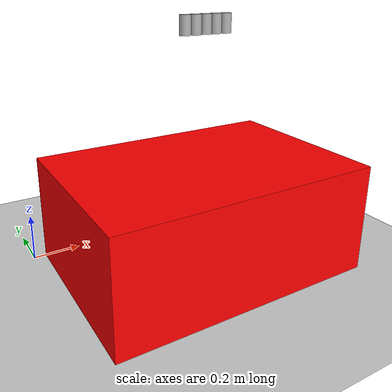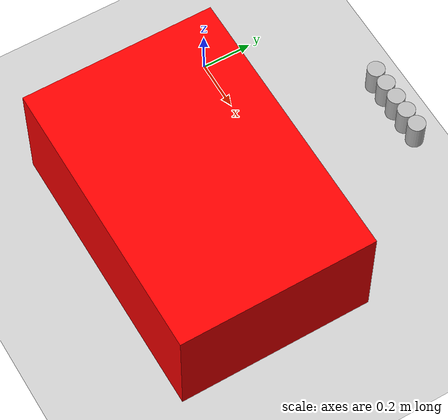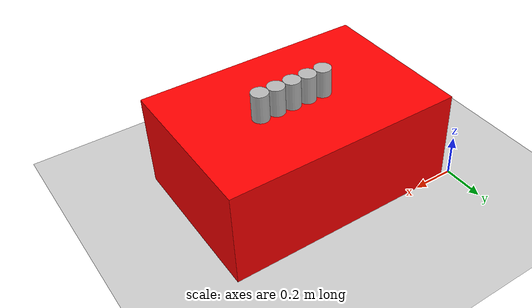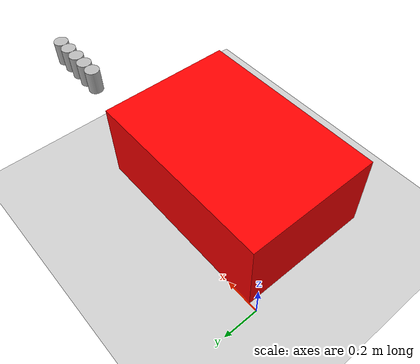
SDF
<sdf version="1.6">
 <world name="default">
  <light name="sun" type="directional">
   <pose>0 0 10 0 -0 0</pose>
   <diffuse>0.8 0.8 0.8 1</diffuse>
   <specular>0.2 0.2 0.2 1</specular>
   <attenuation>
    <range>1000</range>
    <constant>0.9</constant>
    <linear>0.01</linear>
    <quadratic>0.001</quadratic>
   </attenuation>
   <direction>-0.5 0.1 -0.9</direction>
  </light>
  <model name="ground_plane">
   <static>1</static>
   <link name="link">
    <collision name="collision">
     <geometry><plane><normal>0 0 1</normal><size>100 100</size></plane></geometry>
     <surface>
      <contact><collide_bitmask>65535</collide_bitmask></contact>
      <friction><ode><mu>100</mu><mu2>50</mu2></ode></friction>
     </surface>
    </collision>
    <visual name="visual">
     <cast_shadows>0</cast_shadows>
     <geometry><plane><normal>0 0 1</normal><size>100 100</size></plane></geometry>
     <material>
      <script><uri>file://media/materials/scripts/gazebo.material</uri><name>Gazebo/Grey</name></script>
     </material>
    </visual>
   </link>
  </model>
  <gravity>0 0 -9.8</gravity>
  <magnetic_field>6e-06 2.3e-05 -4.2e-05</magnetic_field>
  <atmosphere type="adiabatic"/>
  <physics name="default_physics" default="0" type="ode">
   <max_step_size>0.001</max_step_size>
   <real_time_factor>1</real_time_factor>
   <real_time_update_rate>1000</real_time_update_rate>
  </physics>
  <scene><ambient>0.4 0.4 0.4 1</ambient><background>0.7 0.7 0.7 1</background><shadows>1</shadows></scene>
  <audio><device>default</device></audio>
  <spherical_coordinates>
   <surface_model>EARTH_WGS84</surface_model>
   <latitude_deg>0</latitude_deg>
   <longitude_deg>0</longitude_deg>
   <elevation>0</elevation>
   <heading_deg>0</heading_deg>
  </spherical_coordinates>
  <model name="bench">
   <link name="link_1">
    <inertial>
     <mass>1</mass>
     <inertia>
      <ixx>0.166667</ixx>
      <ixy>0</ixy>
      <ixz>0</ixz>
      <iyy>0.166667</iyy>
      <iyz>0</iyz>
      <izz>0.166667</izz>
     </inertia>
    </inertial>
    <pose>0 -1e-06 0 1.57264 -0 0</pose>
    <visual name="visual">
     <geometry>
      <mesh>
       <uri>/home/hrigroup/MonashRA/moveit_ws/src/models/shelf_parts/shelf_2.STL</uri>
       <scale>1 1 1</scale>
      </mesh>
     </geometry>
     <material>
      <lighting>1</lighting>
      <script><uri>file://media/materials/scripts/gazebo.material</uri><name>Gazebo/Grey</name></script>
      <ambient>1 0 0 0</ambient>
      <shader type="vertex"><normal_map>__default__</normal_map></shader>
      <diffuse>0.7 0.7 0.7 1</diffuse>
      <specular>0.01 0.01 0.01 1</specular>
      <emissive>0 0 0 1</emissive>
     </material>
    </visual>
    <collision name="collision">
     <geometry>
      <mesh>
       <uri>/home/hrigroup/MonashRA/moveit_ws/src/models/shelf_parts/shelf_2.STL</uri>
       <scale>1 1 1</scale>
      </mesh>
     </geometry>
     <surface>
      <friction>
       <ode><mu>1</mu><mu2>1</mu2><fdir1>0 0 0</fdir1><slip1>0</slip1><slip2>0</slip2></ode>
       <torsional>
        <coefficient>1</coefficient>
        <patch_radius>0</patch_radius>
        <surface_radius>0</surface_radius>
        <use_patch_radius>1</use_patch_radius>
        <ode><slip>0</slip></ode>
       </torsional>
      </friction>
      <bounce><restitution_coefficient>0</restitution_coefficient><threshold>1e+06</threshold></bounce>
      <contact>
       <collide_without_contact>0</collide_without_contact>
       <collide_without_contact_bitmask>1</collide_without_contact_bitmask>
       <collide_bitmask>1</collide_bitmask>
       <ode>
        <soft_cfm>0</soft_cfm>
        <soft_erp>0.2</soft_erp>
        <kp>1e+13</kp>
        <kd>1</kd>
        <max_vel>0.01</max_vel>
        <min_depth>0</min_depth>
       </ode>
       <bullet>
        <split_impulse>1</split_impulse>
        <split_impulse_penetration_threshold>-0.01</split_impulse_penetration_threshold>
        <soft_cfm>0</soft_cfm>
        <soft_erp>0.2</soft_erp>
        <kp>1e+13</kp>
        <kd>1</kd>
       </bullet>
      </contact>
     </surface>
    </collision>
   </link>
   <static>1</static>
  </model>
  <model name="beer1">
   <link name="link">
    <pose>0 0 0.05 0 -0 0</pose>
    <inertial>
     <mass>0.39</mass>
     <inertia><ixx>0.00058</ixx><ixy>0</ixy><ixz>0</ixz><iyy>0.00058</iyy><iyz>0</iyz><izz>0.00019</izz></inertia>
    </inertial>
    <collision name="collision">
     <geometry><cylinder><radius>0.03</radius><length>0.10</length></cylinder></geometry>
    </collision>
    <visual name="visual">
     <geometry><cylinder><radius>0.03</radius><length>0.10</length></cylinder></geometry>
     <material>
      <script>
       <uri>model://beer/materials/scripts</uri>
       <uri>model://beer/materials/textures</uri>
       <name>Beer/Diffuse</name>
      </script>
     </material>
    </visual>
   </link>
   <pose>1.1 0.15 0.9 0 0 0</pose>
  </model>
  <model name="beer2">
   <link name="link">
    <pose>0 0 0.05 0 -0 0</pose>
    <inertial>
     <mass>0.39</mass>
     <inertia><ixx>0.00058</ixx><ixy>0</ixy><ixz>0</ixz><iyy>0.00058</iyy><iyz>0</iyz><izz>0.00019</izz></inertia>
    </inertial>
    <collision name="collision">
     <geometry><cylinder><radius>0.03</radius><length>0.10</length></cylinder></geometry>
    </collision>
    <visual name="visual">
     <geometry><cylinder><radius>0.03</radius><length>0.10</length></cylinder></geometry>
     <material>
      <script>
       <uri>model://beer/materials/scripts</uri>
       <uri>model://beer/materials/textures</uri>
       <name>Beer/Diffuse</name>
      </script>
     </material>
    </visual>
   </link>
   <pose>1.04 0.15 0.9 0 0 0</pose>
  </model>
  <model name="beer3">
   <link name="link">
    <pose>0 0 0.05 0 -0 0</pose>
    <inertial>
     <mass>0.39</mass>
     <inertia><ixx>0.00058</ixx><ixy>0</ixy><ixz>0</ixz><iyy>0.00058</iyy><iyz>0</iyz><izz>0.00019</izz></inertia>
    </inertial>
    <collision name="collision">
     <geometry><cylinder><radius>0.03</radius><length>0.10</length></cylinder></geometry>
    </collision>
    <visual name="visual">
     <geometry><cylinder><radius>0.03</radius><length>0.10</length></cylinder></geometry>
     <material>
      <script>
       <uri>model://beer/materials/scripts</uri>
       <uri>model://beer/materials/textures</uri>
       <name>Beer/Diffuse</name>
      </script>
     </material>
    </visual>
   </link>
   <pose>0.98 0.15 0.9 0 0 0</pose>
  </model>
  <model name="beer4">
   <link name="link">
    <pose>0 0 0.05 0 -0 0</pose>
    <inertial>
     <mass>0.39</mass>
     <inertia><ixx>0.00058</ixx><ixy>0</ixy><ixz>0</ixz><iyy>0.00058</iyy><iyz>0</iyz><izz>0.00019</izz></inertia>
    </inertial>
    <collision name="collision">
     <geometry><cylinder><radius>0.03</radius><length>0.10</length></cylinder></geometry>
    </collision>
    <visual name="visual">
     <geometry><cylinder><radius>0.03</radius><length>0.10</length></cylinder></geometry>
     <material>
      <script>
       <uri>model://beer/materials/scripts</uri>
       <uri>model://beer/materials/textures</uri>
       <name>Beer/Diffuse</name>
      </script>
     </material>
    </visual>
   </link>
   <pose>0.92 0.15 0.9 0 0 0</pose>
  </model>
  <model name="beer5">
   <link name="link">
    <pose>0 0 0.05 0 -0 0</pose>
    <inertial>
     <mass>0.39</mass>
     <inertia><ixx>0.00058</ixx><ixy>0</ixy><ixz>0</ixz><iyy>0.00058</iyy><iyz>0</iyz><izz>0.00019</izz></inertia>
    </inertial>
    <collision name="collision">
     <geometry><cylinder><radius>0.03</radius><length>0.10</length></cylinder></geometry>
    </collision>
    <visual name="visual">
     <geometry><cylinder><radius>0.03</radius><length>0.10</length></cylinder></geometry>
     <material>
      <script>
       <uri>model://beer/materials/scripts</uri>
       <uri>model://beer/materials/textures</uri>
       <name>Beer/Diffuse</name>
      </script>
     </material>
    </visual>
   </link>
   <pose>0.86 0.15 0.9 0 0 0</pose>
  </model>
 </world>
</sdf>
